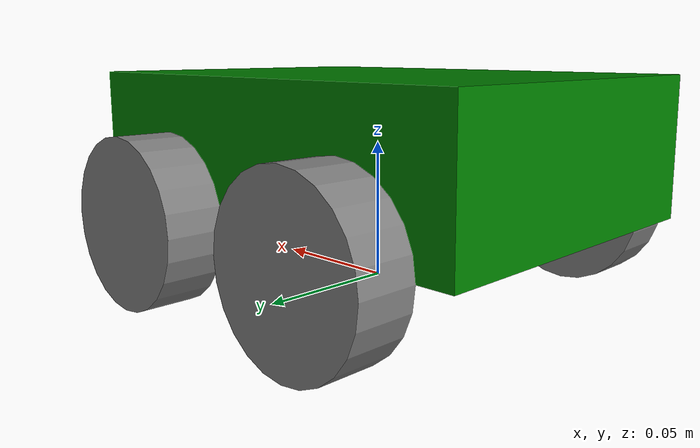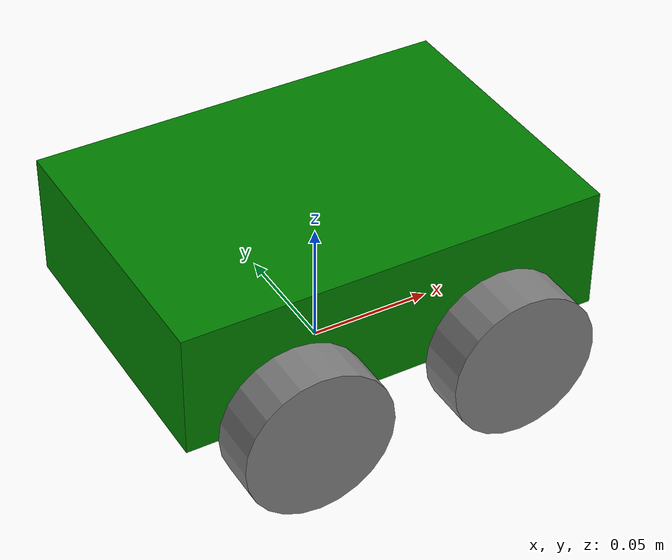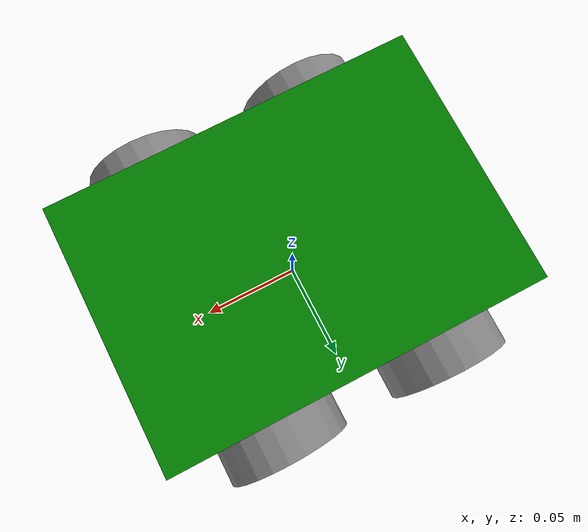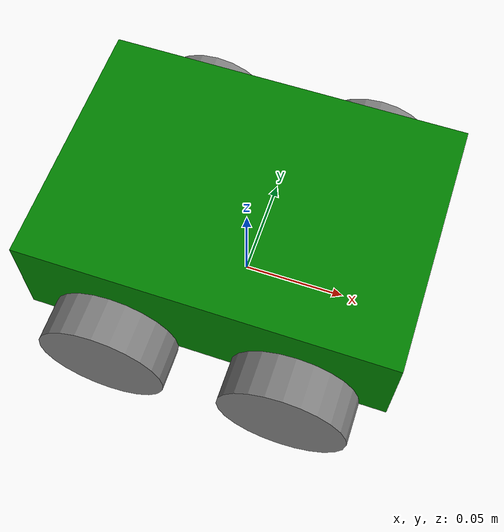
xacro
<?xml version="1.0"?>
<robot xmlns:xacro="http://www.ros.org/wiki/xacro">

    <xacro:property name="base_length" value="0.17" />
    <xacro:property name="base_width" value="0.12" />
    <xacro:property name="base_height" value="0.05" />
    <xacro:property name="wheel_radius" value="0.03" />
    <xacro:property name="wheel_length" value="0.02" />
    <xacro:include filename="common_properties.xacro" />

    <link name="base_link">
        <visual>
            <geometry>
                <box size="${base_length} ${base_width} ${base_height}" />
            </geometry>
            <origin xyz="0 0 ${base_height/2.0}" rpy="0 0 0" />
            <material name="green" />
        </visual>
        <collision>
            <geometry>
                <box size="${base_length} ${base_width} ${base_height}" />
            </geometry>
            <origin xyz="0 0 ${base_height/2.0}" rpy="0 0 0" />
        </collision>
        <xacro:box_inertia m="1.5" x="${base_length}" y="${base_width}" z="${base_height}"
                o_xyz="0 0 ${base_height/2.0}" o_rpy="0 0 0"/>
    </link>

    <xacro:macro name="wheel" params="prefix" >
        <link name="${prefix}_wheel">
            <visual>
                <geometry>
                    <cylinder radius="${wheel_radius}" length="${wheel_length}" />
                </geometry>
                <origin xyz="0 0 0" rpy="${pi/2.0} 0 0"/>
                <material name="gray"/>
            </visual>
            <collision>
                <geometry>
                    <sphere radius="${wheel_radius}"/>
                </geometry>
                <origin xyz="0 0 0" rpy="0 0 0"/>
            </collision>
            <xacro:cylinder_inertia m="0.7" o_xyz="0 0 0" o_rpy="${pi/2.0} 0 0" r="${wheel_radius}" h="${wheel_length}" />
        </link>
    </xacro:macro>

    <xacro:wheel prefix="right_1" />
    <xacro:wheel prefix="left_1" />
    <xacro:wheel prefix="right_2" />
    <xacro:wheel prefix="left_2" />

    <link name="base_footprint" />

    <joint name="front_right_joint" type="continuous">
        <parent link="base_link" />
        <child link="right_1_wheel"/>
        <origin xyz="${base_length/4.0} ${(base_width+wheel_length)/2.0} 0" rpy="0 0 0" />
        <axis xyz="0 1 0"/>
    </joint>

    <joint name="front_left_joint" type="continuous">
        <parent link="base_link" />
        <child link="left_1_wheel"/>
        <origin xyz="${base_length/4.0} ${-(base_width+wheel_length)/2.0} 0" rpy="0 0 0" />
        <axis xyz="0 1 0"/>
    </joint>

    <joint name="back_right_joint" type="continuous">
        <parent link="base_link" />
        <child link="right_2_wheel"/>
        <origin xyz="${-(base_length)/4.0} ${(base_width+wheel_length)/2.0} 0" rpy="0 0 0" />
        <axis xyz="0 1 0"/>
    </joint>

    <joint name="back_left_joint" type="continuous">
        <parent link="base_link" />
        <child link="left_2_wheel"/>
        <origin xyz="${-(base_length)/4.0} ${-(base_width+wheel_length)/2.0} 0" rpy="0 0 0" />
        <axis xyz="0 1 0"/>
    </joint>

    <joint name="base_joint" type="fixed">
        <parent link="base_footprint"/>
        <child link="base_link"/>
        <origin xyz="0 0 ${base_height/2.0}" rpy="0 0 0" />
    </joint>

</robot>

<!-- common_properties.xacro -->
<robot xmlns:xacro="http://www.ros.org/wiki/xacro">

    <material name="green" >
        <color rgba="0 0.5 0 1" />
    </material>

    <material name="gray" >
        <color rgba="0.5 0.5 0.5 1" />
    </material>

    <material name="orange" ><color rgba="1 0.5 0 1" /></material>

    <material name="yellow" ><color rgba="1 1 0 1" /></material>

    <xacro:macro name="box_inertia" params="m x y z o_xyz o_rpy" >
        <inertial>
            <mass value="${m}"/>
            <origin xyz="${o_xyz}" rpy="${o_rpy}"/>
            <inertia ixx="${(m/12)*(y*y + z*z)}" ixy="0" ixz="0"
                    iyy="${(m/12)*(x*x + z*z)}" iyz="0"
                    izz="${(m/12)*(x*x + y*y)}" />
        </inertial>
    </xacro:macro>

    <xacro:macro name="cylinder_inertia" params="m o_xyz o_rpy r h" >
        <inertial>
            <mass value="${m}" />
            <origin xyz="${o_xyz}" rpy="${o_rpy}" />
            <inertia ixx="${(m/12)*(3*r*r+h*h)}" ixy="0" ixz="0"
                    iyy="${(m/12)*(3*r*r+h*h)}" iyz="0"
                    izz="${(m/2)*(r*r)}" />
        </inertial>
    </xacro:macro>

    <xacro:macro name="sphere_inertia" params="m r o_xyz o_rpy" >
        <inertial>
            <mass value="${m}" />
            <origin xyz="${o_xyz}" rpy="${o_rpy}" />
            <inertia ixx="${(2/5)*m*r*r}" ixy="0" ixz="0"
                    iyy="${(2/5)*m*r*r}" iyz="0"
                    izz="${(2/5)*m*r*r}" />
        </inertial>
    </xacro:macro>
</robot>
